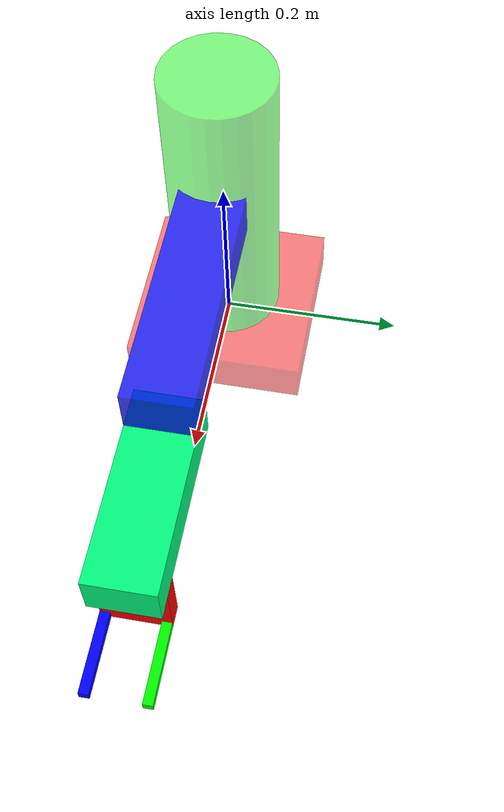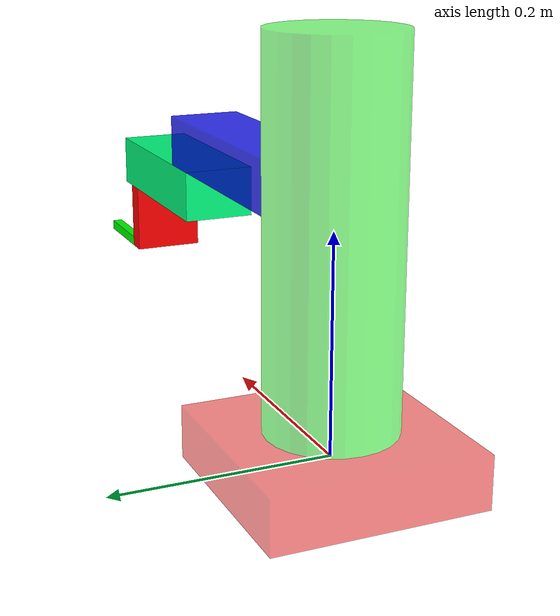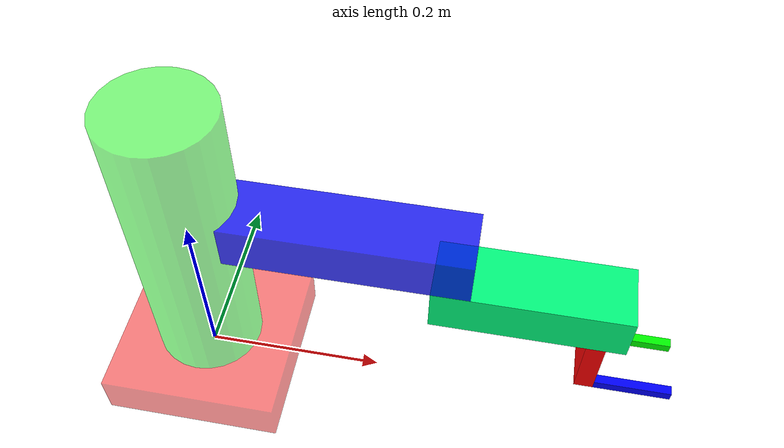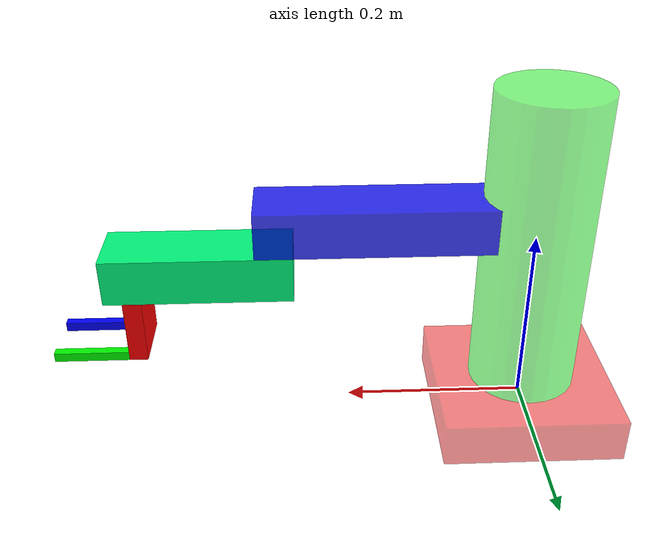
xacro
<?xml version="1.0"?>
<robot xmlns:xacro="http://www.ros.org/wiki/xacro" name="scara_robot">
    <xacro:arg name="initial_positions_file" default="initial_positions.yaml" />

    <!-- Import scara_robot urdf file -->
    <xacro:include filename="$(find scara_robot_description)/urdf/scara_robot.urdf" />

    <!-- Import control_xacro -->
    <xacro:include filename="scara_robot.ros2_control.xacro" />

    <xacro:scara_robot_ros2_control name="FakeSystem" initial_positions_file="$(arg initial_positions_file)"/>

</robot>

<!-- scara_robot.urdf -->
<robot name="scara_robot">
    <link name="base_link">
        <visual>
        <geometry>
            <box size="0.20 0.20 0.05"/>
        </geometry>
        <origin xyz="0.0 0.0 0.0" rpy="0.0 0.0 0.0"/>
        <material name="red">
            <color rgba="1.0 0.0 0.0 0.5"/>
        </material>
        </visual>
    </link>

    <link name="link1">
        <visual>
        <geometry>
            <cylinder radius="0.06" length="0.34"/>
        </geometry>
        <origin xyz="0.0 0.0 0.0" rpy="0.0 0.0 0.0"/>
        <material name="green">
            <color rgba="0.0 1 0.0 0.5"/>
        </material>
        </visual>
    </link>

    <joint name="base2link1" type="revolute">
        <parent link="base_link"/>
        <child link="link1"/>
        <origin xyz="0.0 0.0 0.195" rpy="0.0 0.0 0.0"/>
        <axis xyz="0.0 0.0 1"/>
        <limit lower="-3.14" upper="2.355" effort="0.45" velocity="0.5"/>
    </joint>

    <link name="link2">
        <visual>
        <geometry>
            <box size="0.3 0.07 0.05"/>
        </geometry>
        <origin xyz="0 0.0  0.0" rpy="0.0 0.0 0.0"/>
        <material name="blue">
            <color rgba="0.0 0.0 1 0.8"/>
        </material>
        </visual>
    </link>

    <joint name="link1_to_lik2" type="prismatic">
        <parent link="link1"/>
        <child link="link2"/>
        <origin xyz="0.15 0.0 0.03"/>
        <axis xyz="0.0 0.0 1"/>
        <limit lower="-0.16" upper="0.0" effort="0.45" velocity="0.5"/>
    </joint>

    <link name="link3">
        <visual>
            <geometry>
                <box size="0.2 0.07 0.05"/>
            </geometry>
            <origin xyz="0.08 0.0 0.0" rpy="0.0 0.0 0.0"/>
            <material name="yellow">
                <color rgba="0 1 0.5 1.0"/>
            </material>
        </visual>
    </link>

    <joint name="link2_to_link3" type="revolute">
        <parent link="link2"/>
        <child link="link3"/>
        <origin xyz="0.13 0.0 -0.05" rpy="0.0 0.0 0.0"/>
        <axis xyz="0.0 0.0 1"/>
        <limit lower="3.10" upper="-2.61" effort="0.45" velocity="0.5"/>
    </joint>

    <link name="gripper_base_link">
        <visual>
            <geometry>
                <box size="0.02 0.07 0.07"/>
            </geometry>
            <origin xyz="0.0 0.0 0.0" rpy="0.0 0.0 0.0"/>
            <material name="red">
                <color rgba="1 0 0.0 1.0"/>
            </material>
        </visual>
    </link>

    <joint name="gripper_base_link_to_link3" type="revolute">
        <parent link="link3"/>
        <child link="gripper_base_link"/>
        <origin xyz="0.15 0.0 -0.06" rpy="0.0 0.0 0.0"/>
        <axis xyz="0.0 0.0 1.0"/>
        <limit lower="-2.61" upper="2.61" effort="0.0" velocity="0.0"/>
    </joint>

    <link name="gripper_left">
        <visual>
            <geometry>
                <box size="0.08 0.01 0.01"/>
            </geometry>
            <origin xyz="0.0 0.0 0.0" rpy="0.0 0.0 0.0"/>
            <material name="green">
                <color rgba="0.0 1 0.0 1.0"/>
            </material>
        </visual>
    </link>

    <joint name="left_2_gripper_base" type="prismatic">
        <parent link="gripper_base_link"/>
        <child link="gripper_left"/>
        <origin xyz="0.05 0.03 -0.03" rpy="0.0 0.0 0.0"/>
        <axis xyz="0.0 1 0"/>
        <limit lower="-0.025" upper="0" effort="0.0" velocity="0.0"/>
    </joint>

    <link name="gripper_right">
        <visual>
            <geometry>
                <box size="0.08 0.01 0.01"/>
            </geometry>
            <origin xyz="0.0 0.0 0.0" rpy="0.0 0.0 0.0"/>
            <material name="blue">
                <color rgba="0.0 0 1 1.0"/>
            </material>
        </visual>
    </link>

    <joint name="right_2_gripper_base" type="prismatic">
        <parent link="gripper_base_link"/>
        <child link="gripper_right"/>
        <origin xyz="0.05 -0.03 -0.03" rpy="0.0 0.0 0.0"/>
        <axis xyz="0.0 1 0"/>
        <limit lower="0" upper="0.025" effort="0.0" velocity="0.0"/>
    </joint>
</robot>
